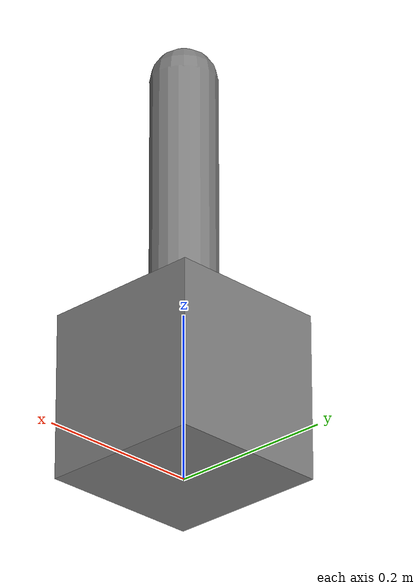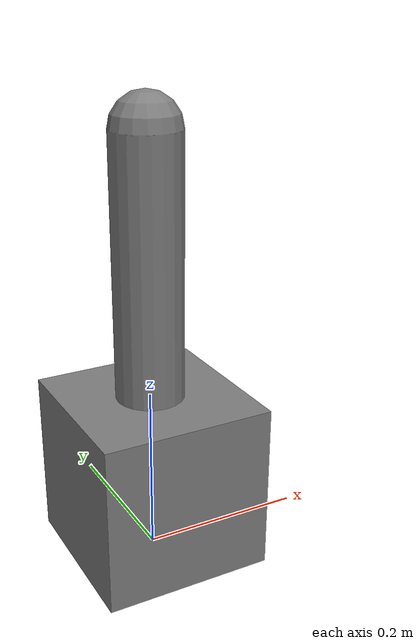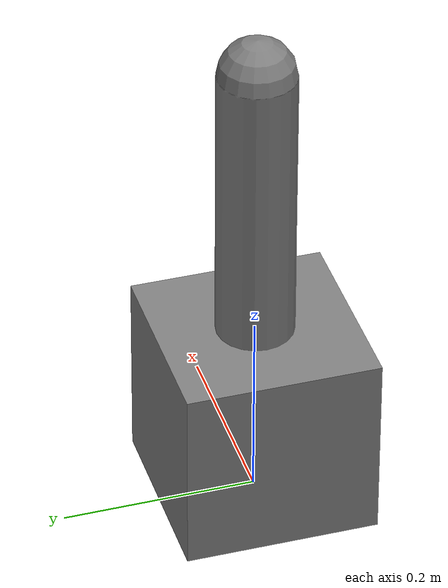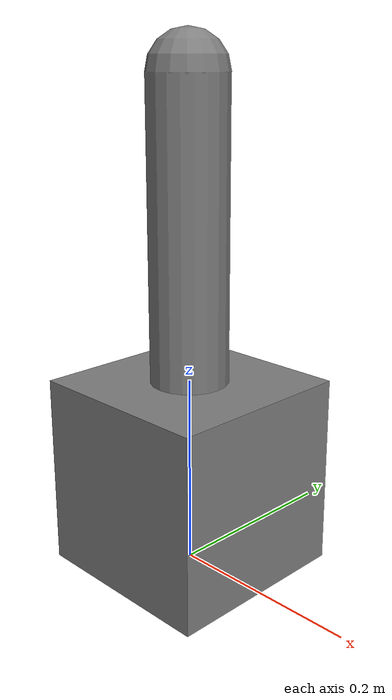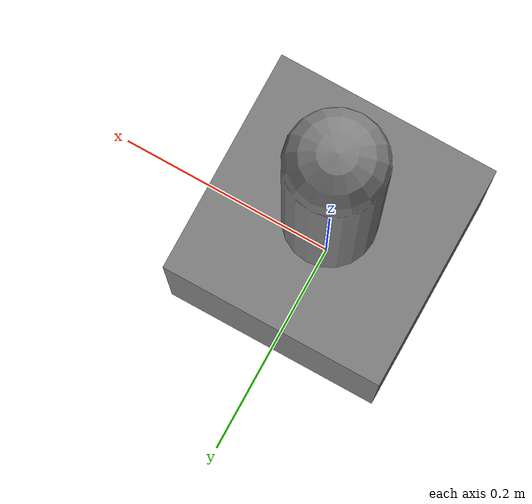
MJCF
<mujoco model="simple_arm">
  <worldbody>
    <body name="base" pos="0 0 0.1">
      <inertial mass="1.0" diaginertia="0.1 0.1 0.1"/>
      <geom name="base_geom" type="box" size="0.1 0.1 0.1"/>
      <body name="arm" pos="0 0 0.2">
        <joint name="shoulder" type="hinge" axis="0 0 1" range="-90 90"/>
        <geom name="arm_geom" type="capsule" size="0.04 0.2"/>
      </body>
    </body>
    <camera name="overview" pos="1 1 1"/>
  </worldbody>
  <actuator>
    <motor name="shoulder_motor" joint="shoulder"/>
  </actuator>
  <sensor>
    <jointpos name="shoulder_position" joint="shoulder"/>
  </sensor>
</mujoco>
